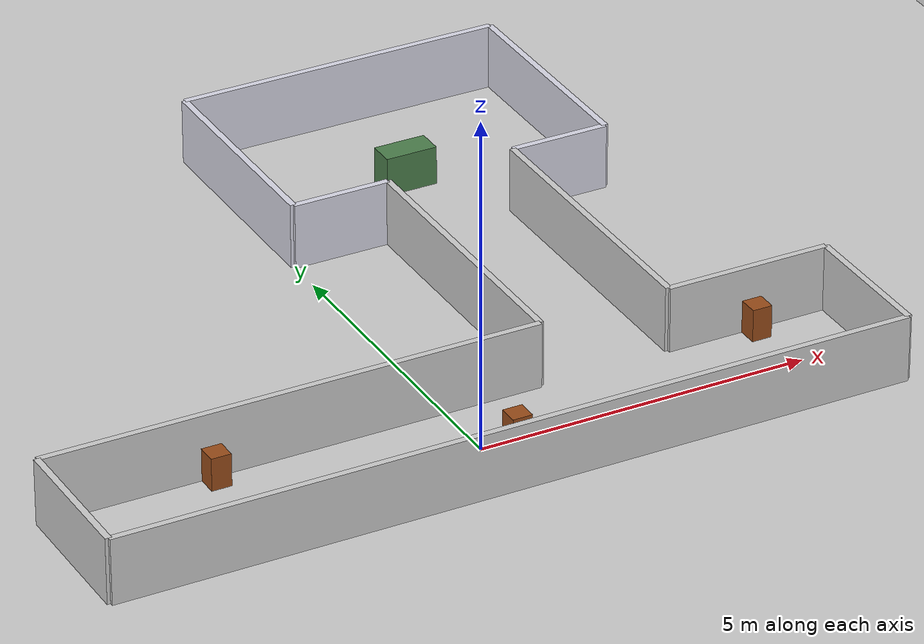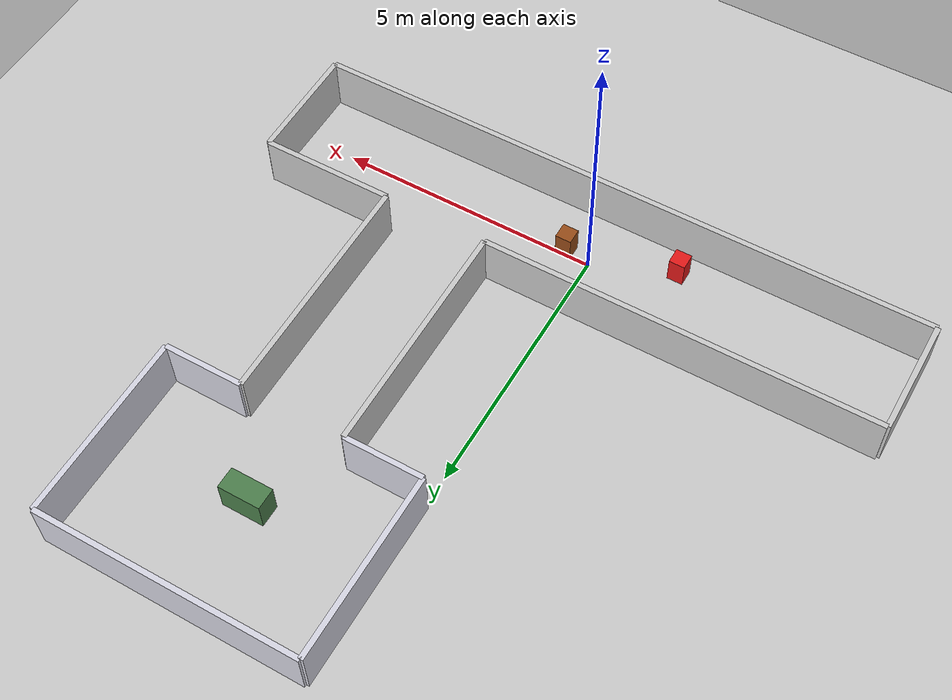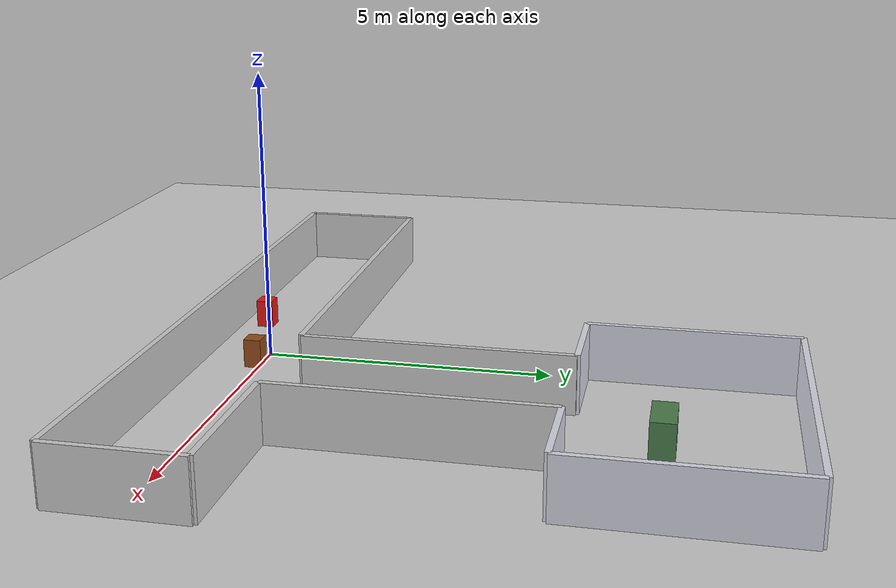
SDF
<?xml version="1.0" ?>
<sdf version="1.6">
  <world name="augdd_hospital">

    <include><uri>model://sun</uri></include>
    <include><uri>model://ground_plane</uri></include>

    <physics type="ode">
      <max_step_size>0.001</max_step_size>
      <real_time_factor>1</real_time_factor>
      <real_time_update_rate>1000</real_time_update_rate>
    </physics>

    <model name="wall_north_1">
      <static>true</static>
      <pose>-2.25 1.1 0.5 0 0 0</pose>
      <link name="link">
        <collision name="c"><geometry><box><size>7.5 0.1 1.0</size></box></geometry></collision>
        <visual name="v"><geometry><box><size>7.5 0.1 1.0</size></box></geometry>
          <material><ambient>0.8 0.8 0.8 1</ambient><diffuse>0.8 0.8 0.8 1</diffuse></material>
        </visual>
      </link>
    </model>

    <model name="wall_north_2">
      <static>true</static>
      <pose>4.75 1.1 0.5 0 0 0</pose>
      <link name="link">
        <collision name="c"><geometry><box><size>2.5 0.1 1.0</size></box></geometry></collision>
        <visual name="v"><geometry><box><size>2.5 0.1 1.0</size></box></geometry>
          <material><ambient>0.8 0.8 0.8 1</ambient><diffuse>0.8 0.8 0.8 1</diffuse></material>
        </visual>
      </link>
    </model>

    <model name="wall_south">
      <static>true</static>
      <pose>0 -1.1 0.5 0 0 0</pose>
      <link name="link">
        <collision name="c"><geometry><box><size>12.0 0.1 1.0</size></box></geometry></collision>
        <visual name="v"><geometry><box><size>12.0 0.1 1.0</size></box></geometry>
          <material><ambient>0.8 0.8 0.8 1</ambient><diffuse>0.8 0.8 0.8 1</diffuse></material>
        </visual>
      </link>
    </model>

    <model name="wall_west_end">
      <static>true</static>
      <pose>-6 0 0.5 0 0 0</pose>
      <link name="link">
        <collision name="c"><geometry><box><size>0.1 2.2 1.0</size></box></geometry></collision>
        <visual name="v"><geometry><box><size>0.1 2.2 1.0</size></box></geometry>
          <material><ambient>0.8 0.8 0.8 1</ambient><diffuse>0.8 0.8 0.8 1</diffuse></material>
        </visual>
      </link>
    </model>

    <model name="wall_east_end">
      <static>true</static>
      <pose>6 0 0.5 0 0 0</pose>
      <link name="link">
        <collision name="c"><geometry><box><size>0.1 2.2 1.0</size></box></geometry></collision>
        <visual name="v"><geometry><box><size>0.1 2.2 1.0</size></box></geometry>
          <material><ambient>0.8 0.8 0.8 1</ambient><diffuse>0.8 0.8 0.8 1</diffuse></material>
        </visual>
      </link>
    </model>

    <model name="branch_wall_west">
      <static>true</static>
      <pose>1.5 3.35 0.5 0 0 0</pose>
      <link name="link">
        <collision name="c"><geometry><box><size>0.1 4.5 1.0</size></box></geometry></collision>
        <visual name="v"><geometry><box><size>0.1 4.5 1.0</size></box></geometry>
          <material><ambient>0.8 0.8 0.8 1</ambient><diffuse>0.8 0.8 0.8 1</diffuse></material>
        </visual>
      </link>
    </model>

    <model name="branch_wall_east">
      <static>true</static>
      <pose>3.5 3.35 0.5 0 0 0</pose>
      <link name="link">
        <collision name="c"><geometry><box><size>0.1 4.5 1.0</size></box></geometry></collision>
        <visual name="v"><geometry><box><size>0.1 4.5 1.0</size></box></geometry>
          <material><ambient>0.8 0.8 0.8 1</ambient><diffuse>0.8 0.8 0.8 1</diffuse></material>
        </visual>
      </link>
    </model>

    <model name="room_south_1">
      <static>true</static>
      <pose>0.75 5.6 0.5 0 0 0</pose>
      <link name="link">
        <collision name="c"><geometry><box><size>1.5 0.1 1.0</size></box></geometry></collision>
        <visual name="v"><geometry><box><size>1.5 0.1 1.0</size></box></geometry>
          <material><ambient>0.85 0.85 0.9 1</ambient><diffuse>0.85 0.85 0.9 1</diffuse></material>
        </visual>
      </link>
    </model>

    <model name="room_south_2">
      <static>true</static>
      <pose>4.25 5.6 0.5 0 0 0</pose>
      <link name="link">
        <collision name="c"><geometry><box><size>1.5 0.1 1.0</size></box></geometry></collision>
        <visual name="v"><geometry><box><size>1.5 0.1 1.0</size></box></geometry>
          <material><ambient>0.85 0.85 0.9 1</ambient><diffuse>0.85 0.85 0.9 1</diffuse></material>
        </visual>
      </link>
    </model>

    <model name="room_north">
      <static>true</static>
      <pose>2.5 9.1 0.5 0 0 0</pose>
      <link name="link">
        <collision name="c"><geometry><box><size>5.0 0.1 1.0</size></box></geometry></collision>
        <visual name="v"><geometry><box><size>5.0 0.1 1.0</size></box></geometry>
          <material><ambient>0.85 0.85 0.9 1</ambient><diffuse>0.85 0.85 0.9 1</diffuse></material>
        </visual>
      </link>
    </model>

    <model name="room_west">
      <static>true</static>
      <pose>0 7.35 0.5 0 0 0</pose>
      <link name="link">
        <collision name="c"><geometry><box><size>0.1 3.5 1.0</size></box></geometry></collision>
        <visual name="v"><geometry><box><size>0.1 3.5 1.0</size></box></geometry>
          <material><ambient>0.85 0.85 0.9 1</ambient><diffuse>0.85 0.85 0.9 1</diffuse></material>
        </visual>
      </link>
    </model>

    <model name="room_east">
      <static>true</static>
      <pose>5 7.35 0.5 0 0 0</pose>
      <link name="link">
        <collision name="c"><geometry><box><size>0.1 3.5 1.0</size></box></geometry></collision>
        <visual name="v"><geometry><box><size>0.1 3.5 1.0</size></box></geometry>
          <material><ambient>0.85 0.85 0.9 1</ambient><diffuse>0.85 0.85 0.9 1</diffuse></material>
        </visual>
      </link>
    </model>

    <model name="obstacle_cart_1">
      <static>true</static>
      <pose>-3.5 0.9 0.25 0 0 0</pose>
      <link name="link">
        <collision name="c"><geometry><box><size>0.3 0.3 0.5</size></box></geometry></collision>
        <visual name="v"><geometry><box><size>0.3 0.3 0.5</size></box></geometry>
          <material><ambient>0.6 0.3 0.1 1</ambient><diffuse>0.6 0.3 0.1 1</diffuse></material>
        </visual>
      </link>
    </model>

    <model name="obstacle_cart_2">
      <static>true</static>
      <pose>0.5 -0.1 0.25 0 0 0</pose>
      <link name="link">
        <collision name="c"><geometry><box><size>0.3 0.3 0.5</size></box></geometry></collision>
        <visual name="v"><geometry><box><size>0.3 0.3 0.5</size></box></geometry>
          <material><ambient>0.6 0.3 0.1 1</ambient><diffuse>0.6 0.3 0.1 1</diffuse></material>
        </visual>
      </link>
    </model>

    <model name="obstacle_cart_3">
      <static>true</static>
      <pose>4.8 0.9 0.25 0 0 0</pose>
      <link name="link">
        <collision name="c"><geometry><box><size>0.3 0.3 0.5</size></box></geometry></collision>
        <visual name="v"><geometry><box><size>0.3 0.3 0.5</size></box></geometry>
          <material><ambient>0.6 0.3 0.1 1</ambient><diffuse>0.6 0.3 0.1 1</diffuse></material>
        </visual>
      </link>
    </model>

    <model name="obstacle_room_furniture">
      <static>true</static>
      <pose>2.5 7.0 0.3 0 0 0</pose>
      <link name="link">
        <collision name="c"><geometry><box><size>0.8 0.4 0.6</size></box></geometry></collision>
        <visual name="v"><geometry><box><size>0.8 0.4 0.6</size></box></geometry>
          <material><ambient>0.3 0.5 0.3 1</ambient><diffuse>0.3 0.5 0.3 1</diffuse></material>
        </visual>
      </link>
    </model>

    <!-- NOT static: drag this in the Gazebo GUI during a Nav2 run to create
         an ad-hoc "dynamic obstacle" test without needing an actor plugin -->
    <model name="movable_obstacle">
      <pose>-1.5 -0.6 0.25 0 0 0</pose>
      <link name="link">
        <inertial><mass>2.0</mass></inertial>
        <collision name="c"><geometry><box><size>0.3 0.3 0.5</size></box></geometry></collision>
        <visual name="v"><geometry><box><size>0.3 0.3 0.5</size></box></geometry>
          <material><ambient>0.9 0.1 0.1 1</ambient><diffuse>0.9 0.1 0.1 1</diffuse></material>
        </visual>
      </link>
    </model>

  </world>
</sdf>
